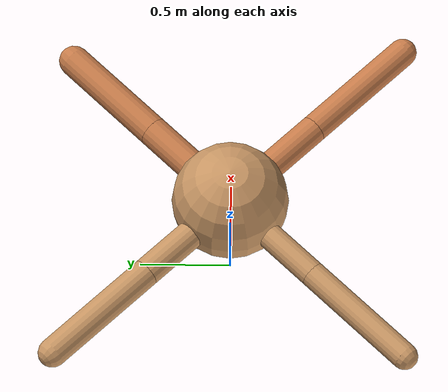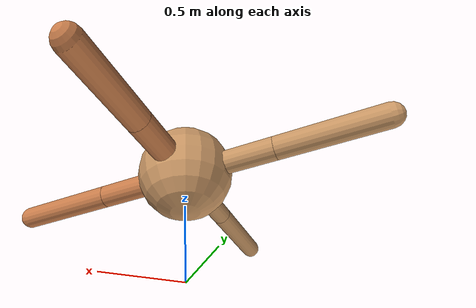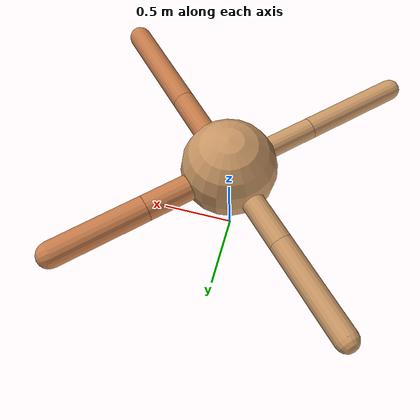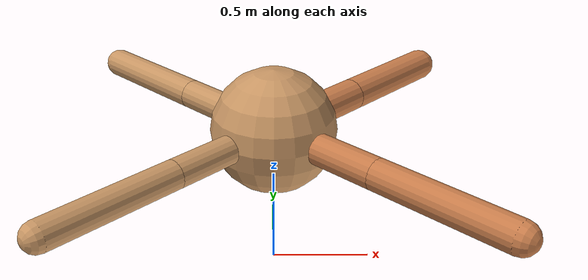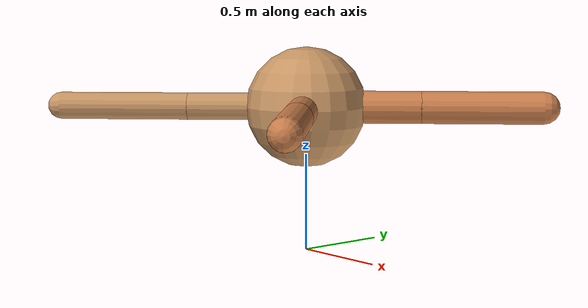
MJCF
<?xml version="1.0" ?>
<mujoco model="ant">

	<compiler angle="degree" coordinate="local" inertiafromgeom="true"/>

	<option integrator="RK4" timestep="0.01"/>

	<custom>

		<numeric data="0.0 0.0 0.55 1.0 0.0 0.0 0.0 0.0 1.0 0.0 -1.0 0.0 -1.0 0.0 1.0" name="init_qpos"/>

	</custom>

	<default>

		<joint armature="1" damping="1" limited="true"/>

		<geom conaffinity="0" condim="3" density="5.0" friction="1.5 0.1 0.1" margin="0.01" rgba="0.8 0.6 0.4 1"/>

	</default>

	<worldbody>

		<body name="torso" pos="0 0 0.75">

			<geom name="torso_geom" pos="0 0 0" size="0.31171926534383065" type="sphere"/>

			<!--joint armature="0" damping="0" limited="false" margin="0.01" name="root" pos="0 0 0" type="free"/-->

			<body name="front_left_leg" pos="0 0 0">

				<geom fromto="0 0 0 0.2 0.2 0" name="aux_1_geom" size="0.08418292340367366" type="capsule" rgba=".8 .5 .3 1"/>

				<body name="aux_1" pos="0.2 0.2 0">

					<joint axis="0 0 1" name="hip_1" pos="0.0 0.0 0.0" range="-40 40" type="hinge"/>

					<geom fromto="0 0 0 0.22039403944744068 0.22039403944744068 0" name="left_leg_geom" size="0.08418292340367366" type="capsule" rgba=".8 .5 .3 1"/>

					<body pos="0.22039403944744068 0.22039403944744068 0" name="front_left_foot">

						<joint axis="-1 1 0" name="ankle_1" pos="0.0 0.0 0.0" range="30 100" type="hinge"/>

						<geom fromto="0 0 0 0.44078807889488136 0.44078807889488136 0" name="left_ankle_geom" size="0.08418292340367366" type="capsule" rgba=".8 .5 .3 1"/>

					</body>

				</body>

			</body>

			<body name="front_right_leg" pos="0 0 0">

				<geom fromto="0 0 0 -0.2 0.2 0" name="aux_2_geom" size="0.07664328919409302" type="capsule"/>

				<body name="aux_2" pos="-0.2 0.2 0">

					<joint axis="0 0 1" name="hip_2" pos="0.0 0.0 0.0" range="-40 40" type="hinge"/>

					<geom fromto="0 0 0 -0.2354723352815162 0.2354723352815162 0" name="right_leg_geom" size="0.07664328919409302" type="capsule"/>

					<body pos="-0.2354723352815162 0.2354723352815162 0" name="front_right_foot">

						<joint axis="1 1 0" name="ankle_2" pos="0.0 0.0 0.0" range="-100 -30" type="hinge"/>

						<geom fromto="0 0 0 -0.4709446705630324 0.4709446705630324 0" name="right_ankle_geom" size="0.07664328919409302" type="capsule"/>

					</body>

				</body>

			</body>

			<body name="left_back_leg" pos="0 0 0">

				<geom fromto="0 0 0 -0.2 -0.2 0" name="aux_3_geom" size="0.07026149898186328" type="capsule"/>

				<body name="aux_3" pos="-0.2 -0.2 0">

					<joint axis="0 0 1" name="hip_3" pos="0.0 0.0 0.0" range="-40 40" type="hinge"/>

					<geom fromto="0 0 0 -0.23602627118222685 -0.23602627118222685 0" name="back_leg_geom" size="0.07026149898186328" type="capsule"/>

					<body pos="-0.23602627118222685 -0.23602627118222685 0" name="left_back_foot">

						<joint axis="-1 1 0" name="ankle_3" pos="0.0 0.0 0.0" range="-100 -30" type="hinge"/>

						<geom fromto="0 0 0 -0.4720525423644537 -0.4720525423644537 0" name="third_ankle_geom" size="0.07026149898186328" type="capsule"/>

					</body>

				</body>

			</body>

			<body name="right_back_leg" pos="0 0 0">

				<geom fromto="0 0 0 0.2 -0.2 0" name="aux_4_geom" size="0.07709495714890778" type="capsule" rgba=".8 .5 .3 1"/>

				<body name="aux_4" pos="0.2 -0.2 0">

					<joint axis="0 0 1" name="hip_4" pos="0.0 0.0 0.0" range="-40 40" type="hinge"/>

					<geom fromto="0 0 0 0.24440564838622822 -0.24440564838622822 0" name="rightback_leg_geom" size="0.07709495714890778" type="capsule" rgba=".8 .5 .3 1"/>

					<body pos="0.24440564838622822 -0.24440564838622822 0" name="right_back_foot">

						<joint axis="1 1 0" name="ankle_4" pos="0.0 0.0 0.0" range="30 100" type="hinge"/>

						<geom fromto="0 0 0 0.48881129677245644 -0.48881129677245644 0" name="fourth_ankle_geom" size="0.07709495714890778" type="capsule" rgba=".8 .5 .3 1"/>

					</body>

				</body>

			</body>

		</body>

	</worldbody>

	<actuator>

		<motor ctrllimited="true" ctrlrange="-1.0 1.0" joint="hip_4" gear="150"/>

		<motor ctrllimited="true" ctrlrange="-1.0 1.0" joint="ankle_4" gear="150"/>

		<motor ctrllimited="true" ctrlrange="-1.0 1.0" joint="hip_1" gear="150"/>

		<motor ctrllimited="true" ctrlrange="-1.0 1.0" joint="ankle_1" gear="150"/>

		<motor ctrllimited="true" ctrlrange="-1.0 1.0" joint="hip_2" gear="150"/>

		<motor ctrllimited="true" ctrlrange="-1.0 1.0" joint="ankle_2" gear="150"/>

		<motor ctrllimited="true" ctrlrange="-1.0 1.0" joint="hip_3" gear="150"/>

		<motor ctrllimited="true" ctrlrange="-1.0 1.0" joint="ankle_3" gear="150"/>

	</actuator>

</mujoco>
